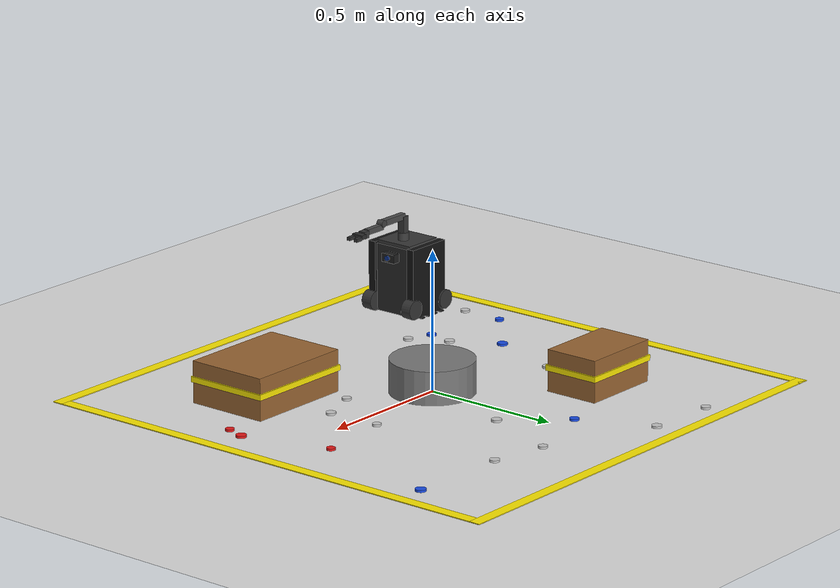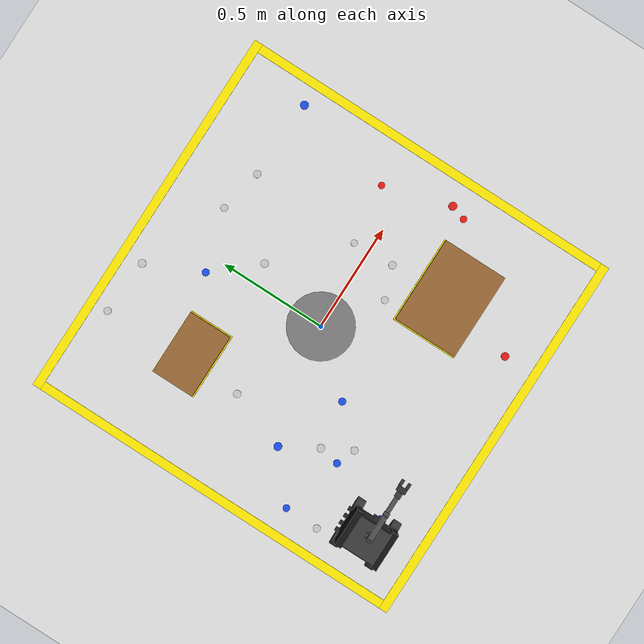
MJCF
<mujoco model="bottle_cap_arena">
  <compiler angle="radian" autolimits="true"/>
  <option timestep="0.004" gravity="0 0 -9.81"/>

  <statistic center="0 0 0.25" extent="1.9"/>

  <visual>
    <headlight diffuse="0.8 0.8 0.8" ambient="0.40 0.40 0.40" specular="0 0 0"/>
    <rgba haze="0.10 0.12 0.12 1"/>
    <global azimuth="145" elevation="-38"/>
  </visual>

  <asset>
    <texture name="floor_tex" type="2d" builtin="checker" rgb1="0.92 0.92 0.92" rgb2="0.84 0.84 0.84" width="512" height="512"/>
    <material name="floor_mat" texture="floor_tex" texrepeat="8 8" reflectance="0.04"/>
  </asset>

  <worldbody>

    <!-- Floor -->
    <geom name="floor" type="plane" size="3 3 0.1" material="floor_mat"/>

    <!-- Yellow floor tape (arena boundary) -->
    <geom name="tape_n" type="box" size="0.8950 0.0200 0.0015" pos="0.0000 0.9000 0.0015" rgba="1.0 0.92 0.0 1"/>
    <geom name="tape_s" type="box" size="0.8950 0.0200 0.0015" pos="0.0000 -0.9000 0.0015" rgba="1.0 0.92 0.0 1"/>
    <geom name="tape_e" type="box" size="0.0200 0.9200 0.0015" pos="0.8750 0.0000 0.0015" rgba="1.0 0.92 0.0 1"/>
    <geom name="tape_w" type="box" size="0.0200 0.9200 0.0015" pos="-0.8750 0.0000 0.0015" rgba="1.0 0.92 0.0 1"/>

    <!-- Crate obstacles with yellow tape -->
    <geom name="crate_small" type="box" size="0.1500 0.1000 0.0750" pos="-0.4000 0.4000 0.0750" rgba="0.6 0.4 0.2 1.0"/>
    <geom name="crate_small_tape" type="box" size="0.1550 0.1050 0.0100" pos="-0.4000 0.4000 0.0850" rgba="1.0 0.92 0.0 1"/>
    <geom name="crate_large" type="box" size="0.2000 0.1500 0.0750" pos="0.4000 -0.4000 0.0750" rgba="0.6 0.4 0.2 1.0"/>
    <geom name="crate_large_tape" type="box" size="0.2050 0.1550 0.0100" pos="0.4000 -0.4000 0.0850" rgba="1.0 0.92 0.0 1"/>

    <!-- Gray collection basket (centre of arena) -->
    <geom name="basket" type="cylinder" size="0.1500 0.0600" pos="0.0000 0.0000 0.0600" rgba="0.48 0.48 0.48 1"/>

    <!-- JETANK robot digital twin (visual placeholder) -->
    <body name="robot" pos="-0.6500 -0.6500 0.1250">
      <freejoint name="robot_free"/>
      <geom name="chassis" type="box" size="0.0790 0.0850 0.1250" rgba="0.16 0.16 0.16 1" mass="1.8"/>
      <geom name="track_l" type="box" size="0.0890 0.0150 0.1310" pos="0.0000 0.0880 0.0000" rgba="0.07 0.07 0.07 1" mass="0.25"/>
      <geom name="tread_l_55" type="box" size="0.0100 0.0160 0.0040" pos="-0.0550 0.1030 -0.1290" rgba="0.13 0.13 0.13 1"/>
      <geom name="tread_l_20" type="box" size="0.0100 0.0160 0.0040" pos="-0.0200 0.1030 -0.1290" rgba="0.13 0.13 0.13 1"/>
      <geom name="tread_l_15" type="box" size="0.0100 0.0160 0.0040" pos="0.0150 0.1030 -0.1290" rgba="0.13 0.13 0.13 1"/>
      <geom name="tread_l_50" type="box" size="0.0100 0.0160 0.0040" pos="0.0500 0.1030 -0.1290" rgba="0.13 0.13 0.13 1"/>
      <geom name="track_r" type="box" size="0.0890 0.0150 0.1310" pos="0.0000 -0.0880 0.0000" rgba="0.07 0.07 0.07 1" mass="0.25"/>
      <geom name="tread_r_55" type="box" size="0.0100 0.0160 0.0040" pos="-0.0550 -0.1030 -0.1290" rgba="0.13 0.13 0.13 1"/>
      <geom name="tread_r_20" type="box" size="0.0100 0.0160 0.0040" pos="-0.0200 -0.1030 -0.1290" rgba="0.13 0.13 0.13 1"/>
      <geom name="tread_r_15" type="box" size="0.0100 0.0160 0.0040" pos="0.0150 -0.1030 -0.1290" rgba="0.13 0.13 0.13 1"/>
      <geom name="tread_r_50" type="box" size="0.0100 0.0160 0.0040" pos="0.0500 -0.1030 -0.1290" rgba="0.13 0.13 0.13 1"/>
      <geom name="hub_fl" type="cylinder" size="0.0350 0.0200" pos="0.0850 0.0910 -0.0900" euler="1.5708 0.0000 0.0000" rgba="0.20 0.20 0.20 1"/>
      <geom name="hub_fr" type="cylinder" size="0.0350 0.0200" pos="0.0850 -0.0910 -0.0900" euler="1.5708 0.0000 0.0000" rgba="0.20 0.20 0.20 1"/>
      <geom name="hub_rl" type="cylinder" size="0.0350 0.0200" pos="-0.0850 0.0910 -0.0900" euler="1.5708 0.0000 0.0000" rgba="0.20 0.20 0.20 1"/>
      <geom name="hub_rr" type="cylinder" size="0.0350 0.0200" pos="-0.0850 -0.0910 -0.0900" euler="1.5708 0.0000 0.0000" rgba="0.20 0.20 0.20 1"/>
      <geom name="top_deck" type="box" size="0.0750 0.0750 0.0060" pos="0.0000 0.0000 0.1310" rgba="0.22 0.22 0.22 1"/>
      <body name="arm_assembly" pos="0 0 0">
        <joint name="arm_lift" type="slide" axis="0 0 1" range="-0.20 0"/>
        <geom name="cam_housing" type="box" size="0.0200 0.0280 0.0160" pos="0.0870 0.0000 0.0875" rgba="0.12 0.12 0.12 1"/>
        <geom name="cam_lens" type="cylinder" size="0.0090 0.0060" pos="0.1090 0.0000 0.0875" euler="0.0000 1.5708 0.0000" rgba="0.05 0.20 0.55 1"/>
        <geom name="arm_base" type="cylinder" size="0.0200 0.0200" pos="0.0200 0.0000 0.1450" mass="0.08" rgba="0.25 0.25 0.25 1"/>
        <geom name="arm_shoulder" type="box" size="0.0130 0.0130 0.0300" pos="0.0200 0.0000 0.1950" rgba="0.22 0.22 0.22 1"/>
        <geom name="arm_upper" type="box" size="0.0600 0.0110 0.0110" pos="0.0800 0.0000 0.2250" rgba="0.30 0.30 0.30 1"/>
        <geom name="arm_elbow" type="cylinder" size="0.0130 0.0130" pos="0.1400 0.0000 0.2250" euler="1.5708 0.0000 0.0000" rgba="0.25 0.25 0.25 1"/>
        <geom name="arm_forearm" type="box" size="0.0420 0.0100 0.0100" pos="0.1820 0.0000 0.2130" rgba="0.30 0.30 0.30 1"/>
        <geom name="arm_wrist" type="box" size="0.0130 0.0130 0.0130" pos="0.2370 0.0000 0.2070" rgba="0.22 0.22 0.22 1"/>
        <geom name="gripper_palm" type="box" size="0.0120 0.0220 0.0080" pos="0.2620 0.0000 0.2070" rgba="0.18 0.18 0.18 1"/>
        <geom name="gripper_l" type="box" size="0.0140 0.0070 0.0060" pos="0.2880 0.0160 0.2030" rgba="0.20 0.20 0.20 1"/>
        <geom name="gripper_r" type="box" size="0.0140 0.0070 0.0060" pos="0.2880 -0.0160 0.2030" rgba="0.20 0.20 0.20 1"/>
        <camera name="wrist_cam" pos="0.2370 0.0000 0.2070" xyaxes="0 -1 0 0 0 1" fovy="80"/>
      </body>
    </body>

    <!-- Bottle caps -->
    <body name="cap_0" pos="0.3848 0.0748 0.0040">
      <freejoint/>
      <geom type="cylinder" size="0.0156 0.0040" rgba="0.78 0.78 0.78 1.0" mass="0.005"/>
    </body>
    <body name="cap_1" pos="-0.7503 -0.4631 0.0040">
      <freejoint/>
      <geom type="cylinder" size="0.0171 0.0040" rgba="0.78 0.78 0.78 1.0" mass="0.005"/>
    </body>
    <body name="cap_2" pos="0.0976 0.3551 0.0040">
      <freejoint/>
      <geom type="cylinder" size="0.0180 0.0040" rgba="0.78 0.78 0.78 1.0" mass="0.005"/>
    </body>
    <body name="cap_3" pos="-0.4458 0.1468 0.0040">
      <freejoint/>
      <geom type="cylinder" size="0.0177 0.0040" rgba="0.78 0.78 0.78 1.0" mass="0.005"/>
    </body>
    <body name="cap_4" pos="-0.5420 -0.1271 0.0040">
      <freejoint/>
      <geom type="cylinder" size="0.0188 0.0040" rgba="0.1 0.3 0.9 1.0" mass="0.005"/>
    </body>
    <body name="cap_5" pos="0.7308 -0.2694 0.0040">
      <freejoint/>
      <geom type="cylinder" size="0.0158 0.0040" rgba="0.9 0.1 0.1 1.0" mass="0.005"/>
    </body>
    <body name="cap_6" pos="-0.2251 -0.2569 0.0040">
      <freejoint/>
      <geom type="cylinder" size="0.0169 0.0040" rgba="0.1 0.3 0.9 1.0" mass="0.005"/>
    </body>
    <body name="cap_7" pos="0.7532 -0.1994 0.0040">
      <freejoint/>
      <geom type="cylinder" size="0.0190 0.0040" rgba="0.9 0.1 0.1 1.0" mass="0.005"/>
    </body>
    <body name="cap_8" pos="0.2054 0.6349 0.0040">
      <freejoint/>
      <geom type="cylinder" size="0.0165 0.0040" rgba="0.78 0.78 0.78 1.0" mass="0.005"/>
    </body>
    <body name="cap_9" pos="0.3261 -0.7468 0.0040">
      <freejoint/>
      <geom type="cylinder" size="0.0179 0.0040" rgba="0.9 0.1 0.1 1.0" mass="0.005"/>
    </body>
    <body name="cap_10" pos="0.7726 0.5835 0.0040">
      <freejoint/>
      <geom type="cylinder" size="0.0189 0.0040" rgba="0.1 0.3 0.9 1.0" mass="0.005"/>
    </body>
    <body name="cap_11" pos="-0.0744 0.5500 0.0040">
      <freejoint/>
      <geom type="cylinder" size="0.0169 0.0040" rgba="0.1 0.3 0.9 1.0" mass="0.005"/>
    </body>
    <body name="cap_12" pos="-0.4637 -0.3836 0.0040">
      <freejoint/>
      <geom type="cylinder" size="0.0169 0.0040" rgba="0.1 0.3 0.9 1.0" mass="0.005"/>
    </body>
    <body name="cap_13" pos="-0.1921 0.8045 0.0040">
      <freejoint/>
      <geom type="cylinder" size="0.0182 0.0040" rgba="0.78 0.78 0.78 1.0" mass="0.005"/>
    </body>
    <body name="cap_14" pos="-0.4467 -0.2887 0.0040">
      <freejoint/>
      <geom type="cylinder" size="0.0184 0.0040" rgba="0.78 0.78 0.78 1.0" mass="0.005"/>
    </body>
    <body name="cap_15" pos="-0.7476 -0.3041 0.0040">
      <freejoint/>
      <geom type="cylinder" size="0.0161 0.0040" rgba="0.1 0.3 0.9 1.0" mass="0.005"/>
    </body>
    <body name="cap_16" pos="0.6607 0.1108 0.0040">
      <freejoint/>
      <geom type="cylinder" size="0.0153 0.0040" rgba="0.9 0.1 0.1 1.0" mass="0.005"/>
    </body>
    <body name="cap_17" pos="0.2482 -0.1719 0.0040">
      <freejoint/>
      <geom type="cylinder" size="0.0166 0.0040" rgba="0.78 0.78 0.78 1.0" mass="0.005"/>
    </body>
    <body name="cap_18" pos="-0.3751 -0.4169 0.0040">
      <freejoint/>
      <geom type="cylinder" size="0.0173 0.0040" rgba="0.78 0.78 0.78 1.0" mass="0.005"/>
    </body>
    <body name="cap_19" pos="0.3939 -0.1177 0.0040">
      <freejoint/>
      <geom type="cylinder" size="0.0177 0.0040" rgba="0.78 0.78 0.78 1.0" mass="0.005"/>
    </body>
    <body name="cap_20" pos="-0.4480 0.8189 0.0040">
      <freejoint/>
      <geom type="cylinder" size="0.0170 0.0040" rgba="0.78 0.78 0.78 1.0" mass="0.005"/>
    </body>
    <body name="cap_21" pos="0.4080 0.5940 0.0040">
      <freejoint/>
      <geom type="cylinder" size="0.0175 0.0040" rgba="0.78 0.78 0.78 1.0" mass="0.005"/>
    </body>

  </worldbody>
</mujoco>
